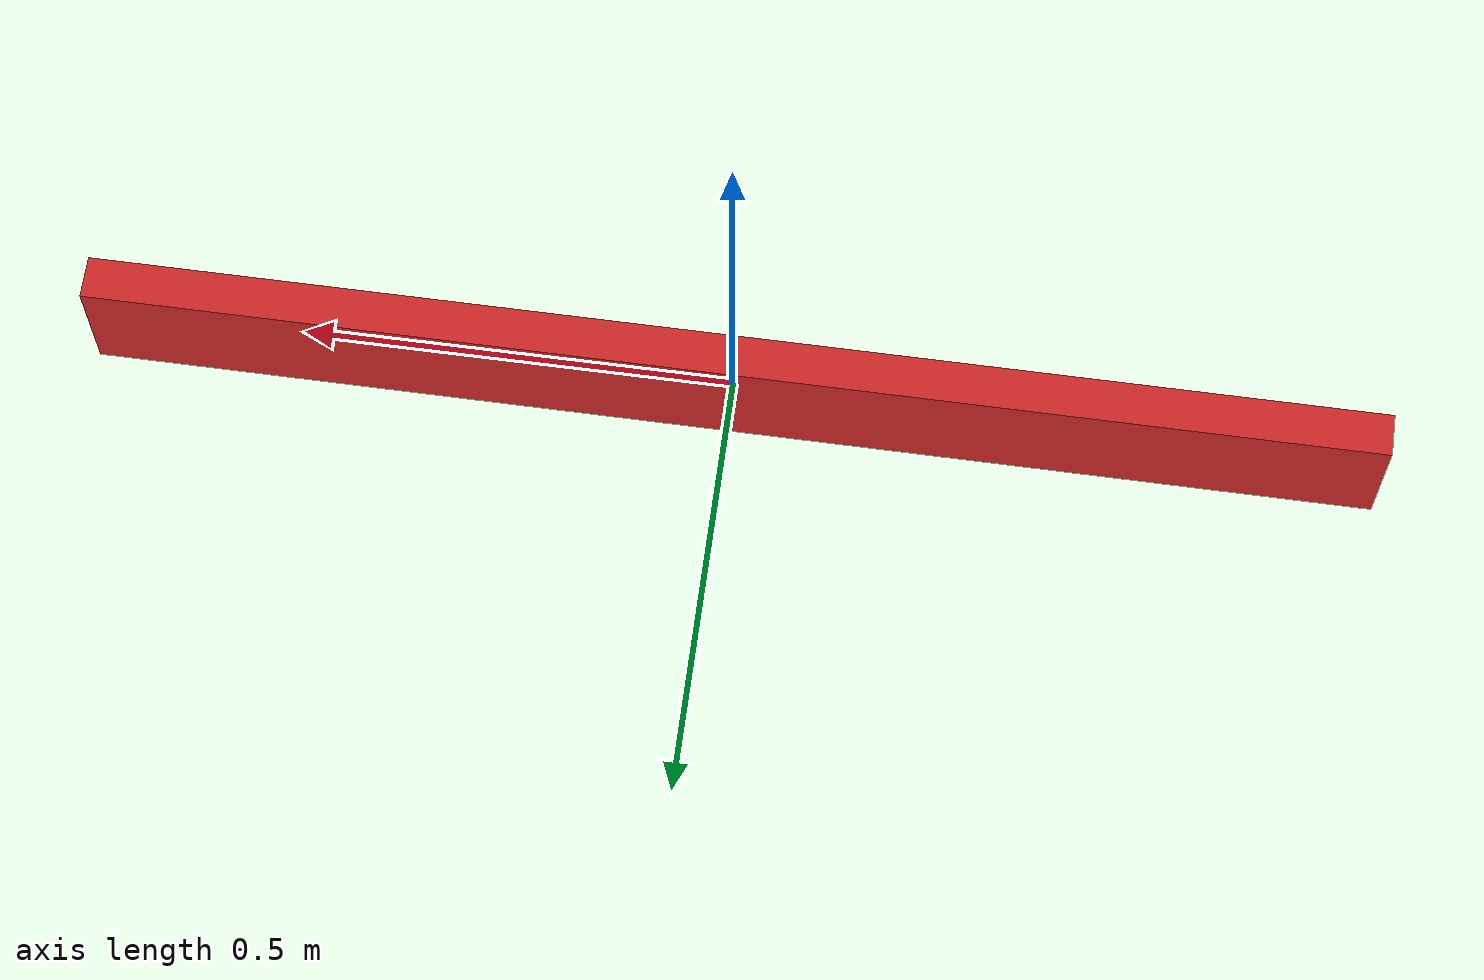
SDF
<?xml version="1.0" ?>
<sdf version="1.5">
  <model name="Shelves high 2">
    <static>true</static>
    <link name="link">
      <collision name="collision_frame">
        <pose frame=''>0 0 0 0 -0 0</pose>
        <geometry>
          <box>
              <size>1.50 0.050 0.15</size>
          </box>
        </geometry>
	      <surface>
          <contact>
            <ode>
              <max_vel>0.1</max_vel>
              <min_depth>0.001</min_depth>
            </ode>
          </contact>
        </surface>
      </collision>
      <visual name='visual_frame'>
        <pose frame=''>0 0 0 0 -0 0</pose>
        <geometry>
          <box>
            <size>1.50 0.05 0.15</size>
          </box>
        </geometry>
        <material>
          <lighting>1</lighting>
          <script>
            <uri>file://media/materials/scripts/gazebo.material</uri>
            <name>Gazebo/Red</name>
          </script>
          <shader type='pixel'>
            <normal_map>__default__</normal_map>
          </shader>
        </material>
        <transparency>0</transparency>
        <cast_shadows>1</cast_shadows>
      </visual>
    </link>
  </model>
</sdf>
